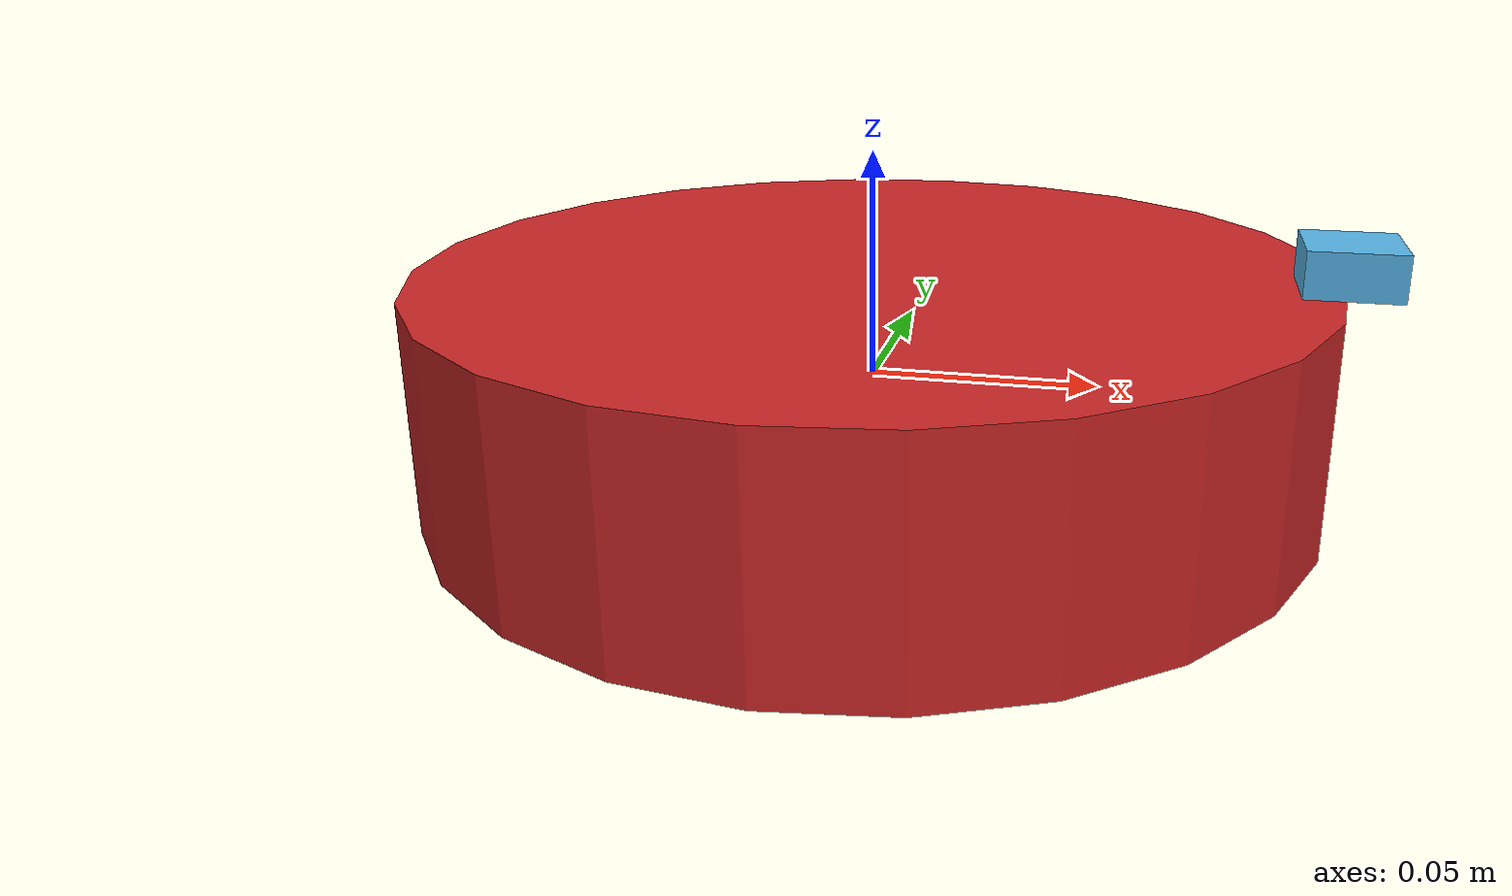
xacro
<?xml version='1.0'?>

<robot name="robot" xmlns:xacro="http://www.ros.org/wiki/xacro">

  <xacro:property name="camera_width" value="0.02"/>
  <xacro:property name="camera_length" value="0.02"/>
  <xacro:property name="camera_height" value="0.01"/>
  <xacro:property name="camera_mass" value="0.01"/>
  <xacro:property name="chassis_height" value="0.05"/>
  <xacro:property name="chassis_mass" value="100000009.99"/>
  <xacro:property name="chassis_radius" value="0.1"/>

  <xacro:include filename="$(find robbie)/urdf/macros.xacro"/>

  <!-- Body -->

  <link name='chassis'>
    <xacro:cylinder_inertial name="chassis" m="${chassis_mass}" r="${chassis_radius}" h="${chassis_height}"/>
    <visual name='chassis_visual'>
      <origin xyz="0 0 0" rpy=" 0 0 0"/>
      <geometry>
        <cylinder radius="${chassis_radius}" length="${chassis_height}"/>
      </geometry>
    </visual>
  </link>

  <!-- Camera -->

  <link name='camera_link'>
    <xacro:box_inertial name="camera_link" m="${camera_mass}" x="${camera_width}" y="${camera_length}" z="${camera_height}"/>
    <visual name='camera_link_visual'>
      <origin xyz="0 0 0" rpy=" 0 0 0"/>
      <geometry>
        <box size="${camera_length} ${camera_width} ${camera_height}"/>
      </geometry>
    </visual>
  </link>

  <joint name="camera_joint" type="fixed">
    <parent link="chassis"/>
    <child link="camera_link"/>
    <origin xyz="${chassis_radius} 0 ${chassis_height/2+camera_height/2}"/>
  </joint>

  <gazebo reference="camera_link">
    <sensor type="camera" name="camera1">
      <update_rate>30.0</update_rate>
      <camera name="head">
        <horizontal_fov>2.094395</horizontal_fov> <!--120 deg-->
        <image>
          <width>3840</width>
          <height>2160</height>
          <format>R8G8B8</format>
        </image>
        <clip>
          <near>0.02</near>
          <far>300</far>
        </clip>
        <noise>
          <type>gaussian</type>
          <!-- Noise is sampled independently per pixel on each frame.
              That pixel's noise value is added to each of its color
              channels, which at that point lie in the range [0,1]. -->
          <mean>0.0</mean>
          <stddev>0.007</stddev>
        </noise>
      </camera>
      <plugin name="camera_controller" filename="libgazebo_ros_camera.so">
        <alwaysOn>true</alwaysOn>
        <updateRate>0.0</updateRate>
        <cameraName>rrbot/camera1</cameraName>
        <imageTopicName>image_raw</imageTopicName>
        <cameraInfoTopicName>camera_info</cameraInfoTopicName>
        <frameName>camera_link</frameName>
        <hackBaseline>0.07</hackBaseline>
        <distortionK1>0.0</distortionK1>
        <distortionK2>0.0</distortionK2>
        <distortionK3>0.0</distortionK3>
        <distortionT1>0.0</distortionT1>
        <distortionT2>0.0</distortionT2>
      </plugin>
    </sensor>
  </gazebo>

  <!-- Disable gravity and wind -->
  <gazebo reference="chassis">
    <enable_wind>false</enable_wind>
    <gravity>false</gravity>
  </gazebo>

  <gazebo reference="camera_link">
    <enable_wind>false</enable_wind>
    <gravity>false</gravity>
  </gazebo>

  <!-- Special ghost colour! -->
  <gazebo reference="chassis">
    <material>Gazebo/Red</material>
  </gazebo>

</robot>
